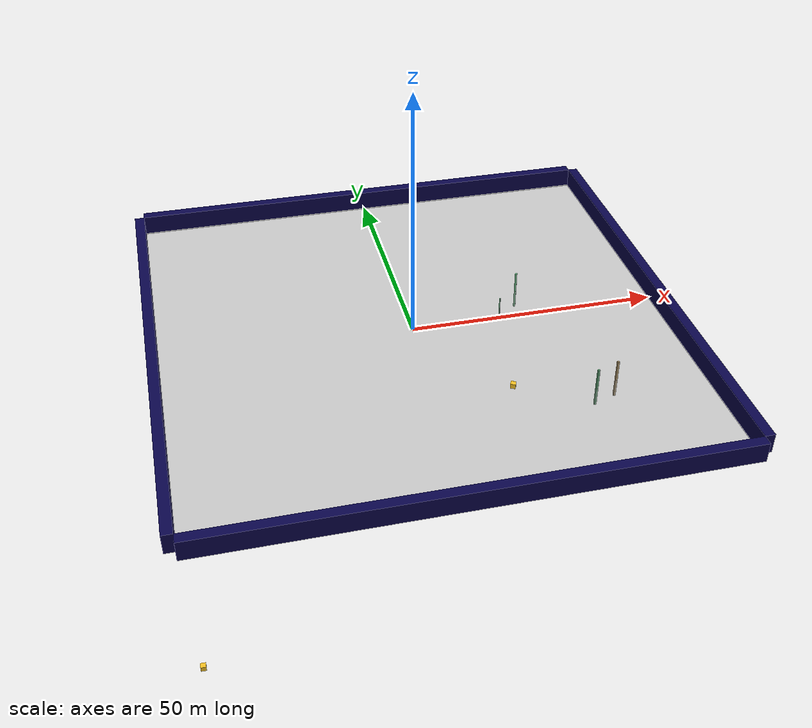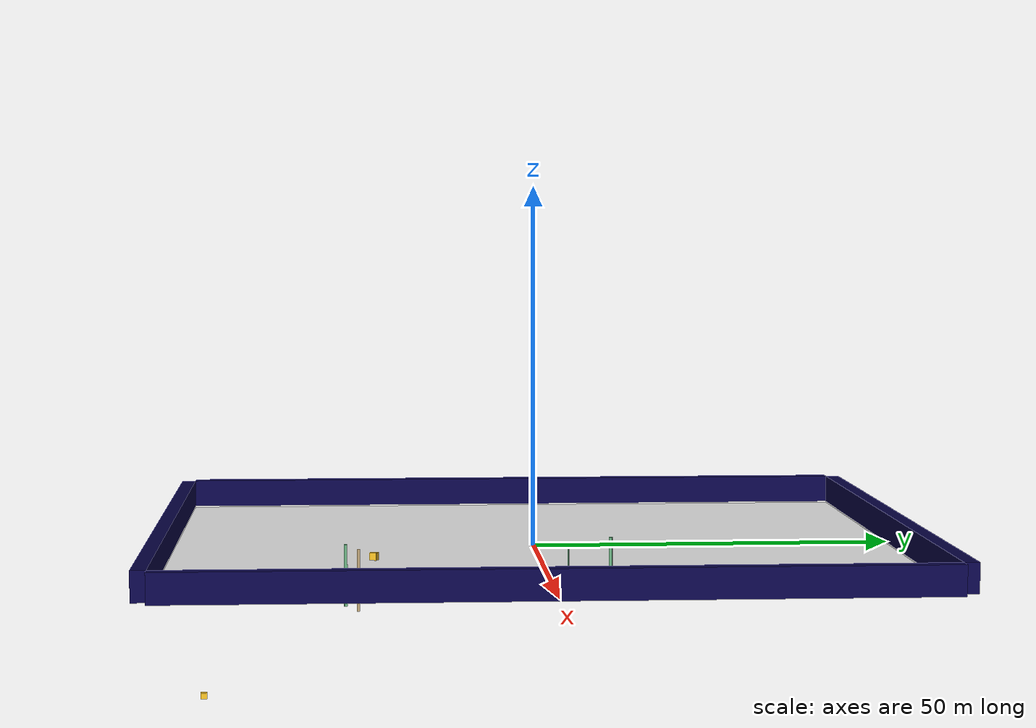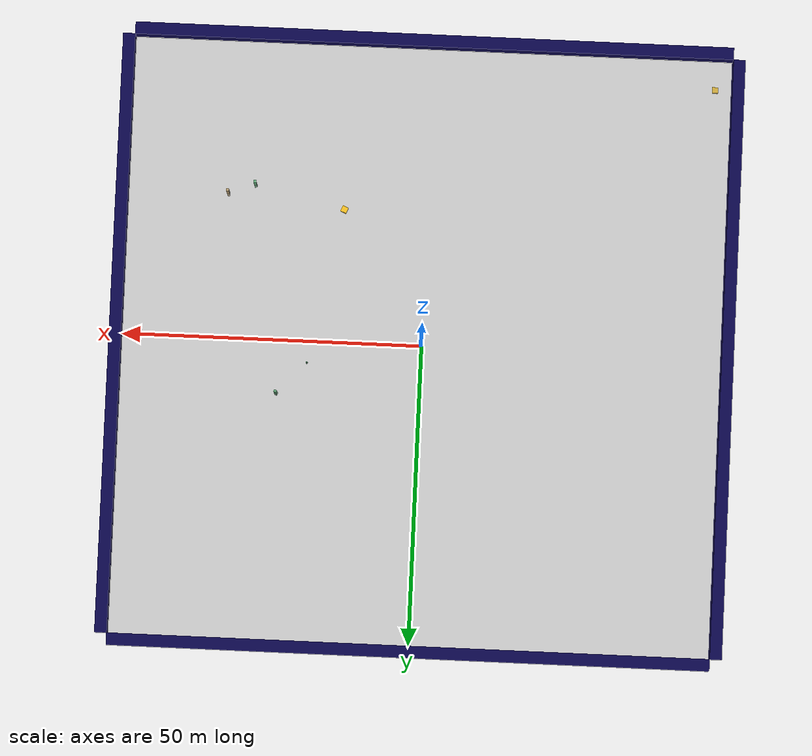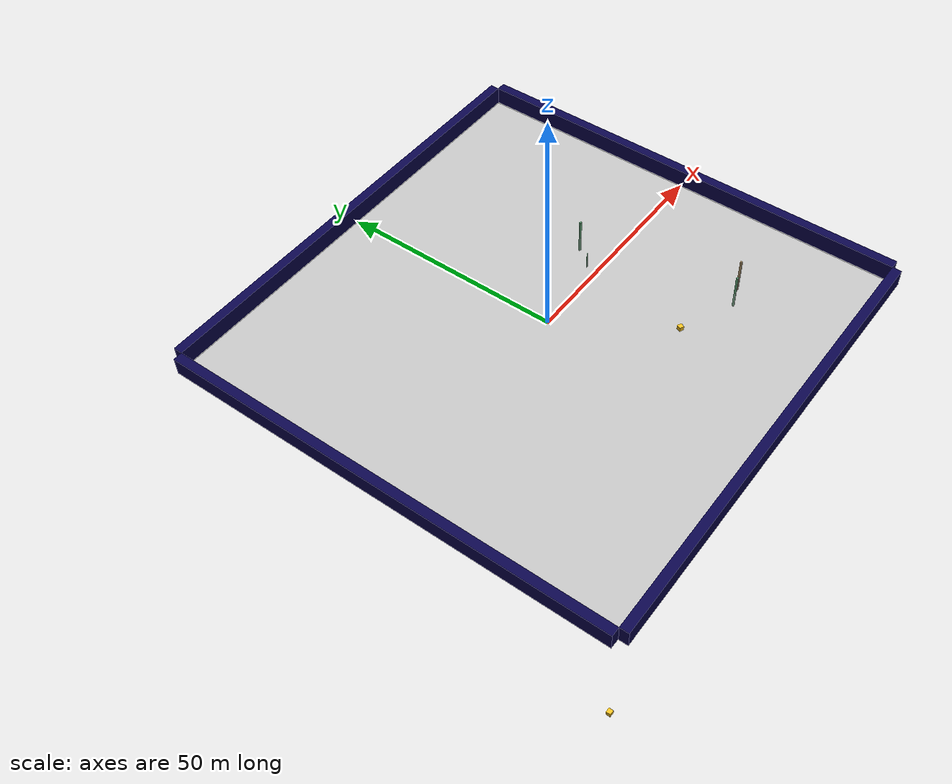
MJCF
<mujoco model="unnamed_model">
  <default>
    <default class="/" />
    <default class="border/" />
    <default class="border_1/" />
    <default class="border_2/" />
    <default class="border_3/" />
    <default class="placeholder/" />
    <default class="agent/" />
    <default class="tree0/" />
    <default class="tree1/" />
    <default class="tree2/" />
    <default class="tree3/" />
  </default>
  <worldbody>
    <body name="border/">
      <body name="border/border" pos="0 51 2">
        <geom name="border/border_geom" class="border/" type="box" size="50.0 1.0 2.0" rgba="0.035 0.016 0.29 1.0" />
      </body>
    </body>
    <body name="border_1/">
      <body name="border_1/border" pos="0 -51 2">
        <geom name="border_1/border_geom" class="border_1/" type="box" size="50.0 1.0 2.0" rgba="0.035 0.016 0.29 1.0" />
      </body>
    </body>
    <body name="border_2/">
      <body name="border_2/border" pos="51 0 2">
        <geom name="border_2/border_geom" class="border_2/" type="box" size="1.0 50.0 2.0" rgba="0.035 0.016 0.29 1.0" />
      </body>
    </body>
    <body name="border_3/">
      <body name="border_3/border" pos="-51 0 2">
        <geom name="border_3/border_geom" class="border_3/" type="box" size="1.0 50.0 2.0" rgba="0.035 0.016 0.29 1.0" />
      </body>
    </body>
    <body name="placeholder/">
      <body name="placeholder/placeholder" pos="-49 -49 -30">
        <geom name="placeholder/box_geom" class="placeholder/" type="box" size="0.5 0.5 0.5" rgba="0.949 0.7451 0.1333 1.0" euler="0 0 0" />
      </body>
    </body>
    <body euler="0 0 156.4366632604482" name="agent/">
      <joint name="agent/boxagent_freeJoint/" class="/" type="free" />
      <body name="agent/agent" pos="-21.590050000000002 14.966999999999999 0.5" euler="0 0 0">
        <geom name="agent/boxagent_geom" class="agent/" type="box" size="0.5 0.5 0.5" rgba="0.949 0.7451 0.1333 1.0" euler="0 0 0" />
        <camera name="agent/boxagent_camera" class="agent/" pos="1 0 0.5" euler="90 0 0" />
      </body>
    </body>
    <body name="tree0/">
      <body name="tree0/tree0" pos="18.958649999999999 3.5020999999999987 0.10000000000000001" euler="0 0 143.50201046071624">
        <geom name="tree0/tree_geom" class="tree0/" type="box" size="0.1 0.1 2.0" rgba="0.396078431372549 0.6705882352941176 0.48627450980392156 1.0" />
      </body>
    </body>
    <body name="tree1/">
      <body name="tree1/tree1" pos="33.384 -24.444600000000001 0.10000000000000001" euler="0 0 0.58332372909922015">
        <geom name="tree1/tree_geom" class="tree1/" type="box" size="0.2 0.2 4.0" rgba="0.6980392156862745 0.6 0.43137254901960786 1.0" />
      </body>
    </body>
    <body name="tree2/">
      <body name="tree2/tree2" pos="28.909749999999999 -26.099299999999999 0.10000000000000001" euler="0 0 -84.921206442766703">
        <geom name="tree2/tree_geom" class="tree2/" type="box" size="0.2 0.2 4.0" rgba="0.396078431372549 0.6705882352941176 0.48627450980392156 1.0" />
      </body>
    </body>
    <body name="tree3/">
      <body name="tree3/tree3" pos="23.92475 8.7168000000000063 0.10000000000000001" euler="0 0 -112.14634917492381">
        <geom name="tree3/tree_geom" class="tree3/" type="box" size="0.2 0.2 4.0" rgba="0.396078431372549 0.6705882352941176 0.48627450980392156 1.0" />
      </body>
    </body>
    <geom name="base_plane" class="/" type="plane" size="50 50 0.10000000000000001" />
  </worldbody>
</mujoco>
